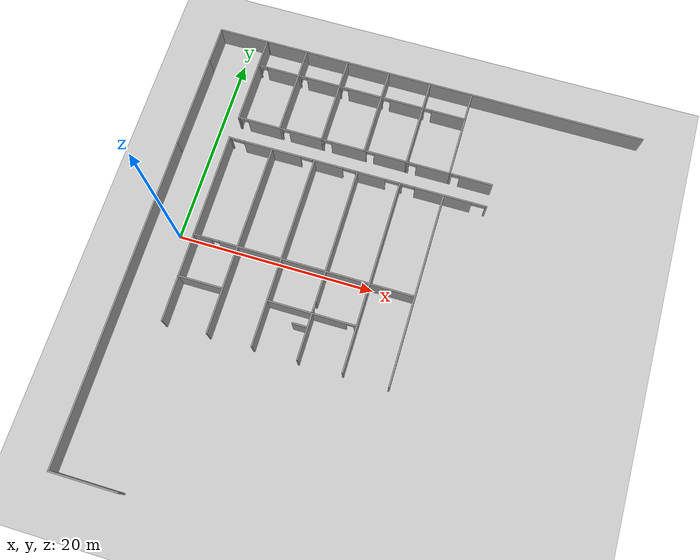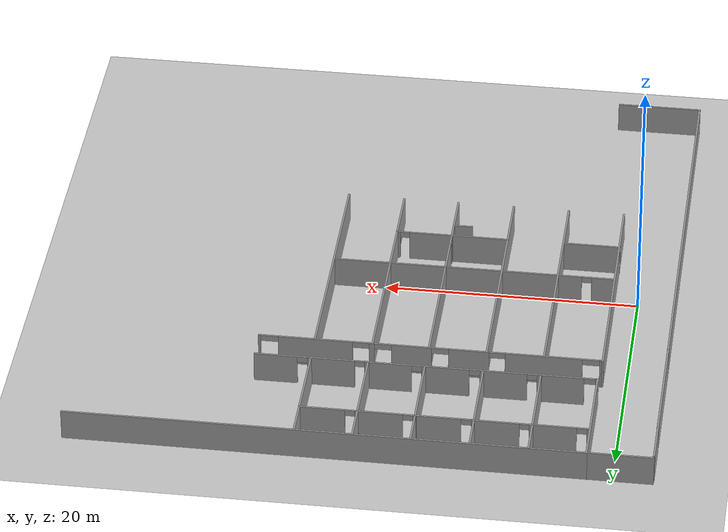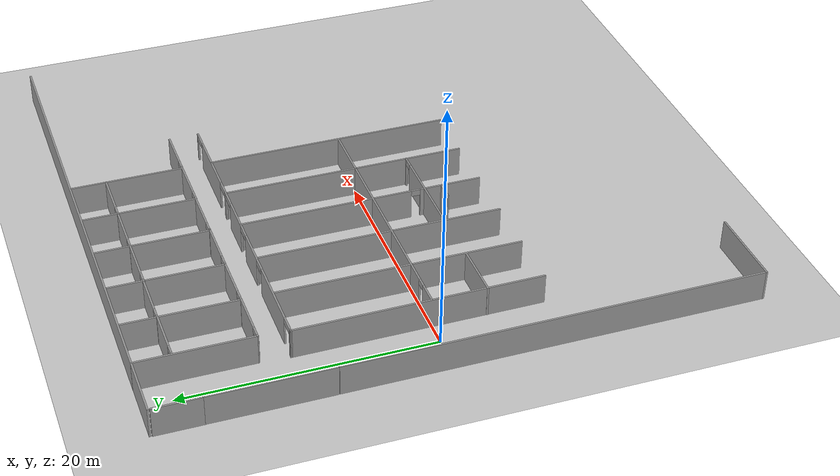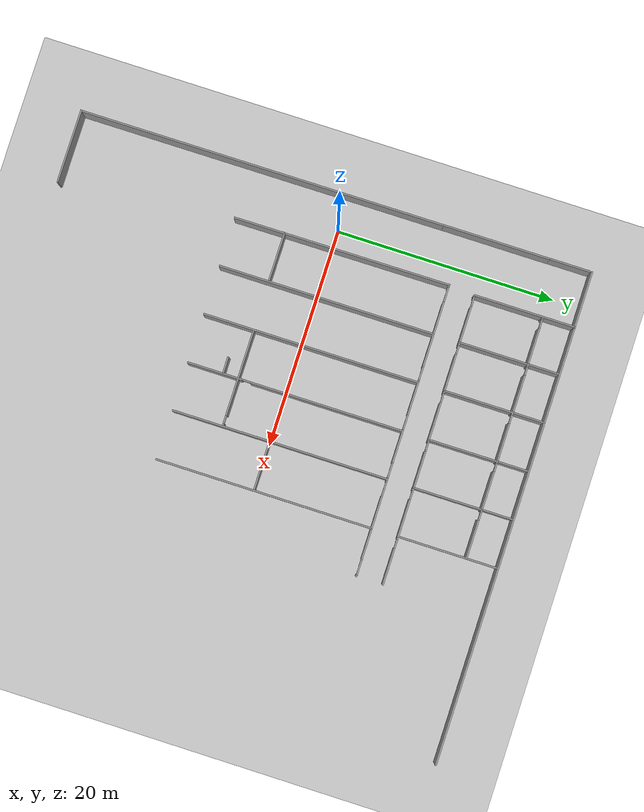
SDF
<sdf version="1.7">
 <world name="default">
  <model name="ground_plane">
   <static>1</static>
   <link name="link">
    <collision name="collision">
     <geometry><plane><normal>0 0 1</normal><size>100 100</size></plane></geometry>
     <surface>
      <contact><collide_bitmask>65535</collide_bitmask></contact>
      <friction><ode><mu>100</mu><mu2>50</mu2></ode></friction>
     </surface>
    </collision>
    <visual name="visual">
     <cast_shadows>0</cast_shadows>
     <geometry><plane><normal>0 0 1</normal><size>100 100</size></plane></geometry>
     <material>
      <script><uri>file://media/materials/scripts/gazebo.material</uri><name>Gazebo/Grey</name></script>
     </material>
    </visual>
   </link>
  </model>
  <model name="anglo_teste">
   <pose>0.302227 -1.18447 0 0 -0 0</pose>
   <link name="Wall_2">
    <collision name="Wall_2_Collision">
     <geometry><box><size>33.2918 0.15 2.5</size></box></geometry>
     <pose>0 0 1.25 0 -0 0</pose>
    </collision>
    <visual name="Wall_2_Visual">
     <pose>0 0 1.25 0 -0 0</pose>
     <geometry><box><size>33.2918 0.15 2.5</size></box></geometry>
     <material>
      <script><uri>file://media/materials/scripts/gazebo.material</uri><name>Gazebo/Grey</name></script>
      <ambient>1 1 1 1</ambient>
     </material>
     <meta><layer>0</layer></meta>
    </visual>
    <pose>-3.28849 -6.78646 0 0 -0 -1.5686</pose>
   </link>
   <link name="Wall_4">
    <collision name="Wall_4_Collision">
     <geometry><box><size>6.75 0.15 2.5</size></box></geometry>
     <pose>0 0 1.25 0 -0 0</pose>
    </collision>
    <visual name="Wall_4_Visual">
     <pose>0 0 1.25 0 -0 0</pose>
     <geometry><box><size>6.75 0.15 2.5</size></box></geometry>
     <material>
      <script><uri>file://media/materials/scripts/gazebo.material</uri><name>Gazebo/Grey</name></script>
      <ambient>1 1 1 1</ambient>
     </material>
     <meta><layer>0</layer></meta>
    </visual>
    <pose>0.047964 -23.4996 0 0 -0 3.14159</pose>
   </link>
   <link name="Wall_6">
    <collision name="Wall_6_Collision">
     <geometry><box><size>5.25 0.15 2.5</size></box></geometry>
     <pose>0 0 1.25 0 -0 0</pose>
    </collision>
    <visual name="Wall_6_Visual">
     <pose>0 0 1.25 0 -0 0</pose>
     <geometry><box><size>5.25 0.15 2.5</size></box></geometry>
     <material>
      <script><uri>file://media/materials/scripts/gazebo.material</uri><name>Gazebo/Grey</name></script>
      <ambient>1 1 1 1</ambient>
     </material>
     <meta><layer>0</layer></meta>
    </visual>
    <pose>-0.774526 23.4996 0 0 -0 3.14159</pose>
   </link>
   <link name="Wall_8">
    <collision name="Wall_8_Collision">
     <geometry><box><size>3.75 0.15 2.5</size></box></geometry>
     <pose>0 0 1.25 0 -0 0</pose>
    </collision>
    <visual name="Wall_8_Visual">
     <pose>0 0 1.25 0 -0 0</pose>
     <geometry><box><size>3.75 0.15 2.5</size></box></geometry>
     <material>
      <script><uri>file://media/materials/scripts/gazebo.material</uri><name>Gazebo/Grey</name></script>
      <ambient>1 1 1 1</ambient>
     </material>
     <meta><layer>0</layer></meta>
    </visual>
    <pose>-3.34796 21.478 0 0 -0 -1.5708</pose>
   </link>
   <static>1</static>
  </model>
  <model name="anglo_3_andar_metade">
   <pose>-4.28797 -1.08288 0 0 -0 0</pose>
   <link name="Wall_2">
    <collision name="Wall_2_Collision">
     <geometry><box><size>40.0201 0.15 2.5</size></box></geometry>
     <pose>0 0 1.25 0 -0 0</pose>
    </collision>
    <visual name="Wall_2_Visual">
     <pose>0 0 1.25 0 -0 0</pose>
     <geometry><box><size>40.0201 0.15 2.5</size></box></geometry>
     <material>
      <script><uri>file://media/materials/scripts/gazebo.material</uri><name>Gazebo/Grey</name></script>
      <ambient>1 1 1 1</ambient>
     </material>
     <meta><layer>0</layer></meta>
    </visual>
    <pose>26.2327 23.3787 0 0 -0 3.14034</pose>
   </link>
   <link name="Wall_31">
    <collision name="Wall_31_Collision">
     <geometry><box><size>9.25 0.15 2.5</size></box></geometry>
     <pose>0 0 1.25 0 -0 0</pose>
    </collision>
    <visual name="Wall_31_Visual">
     <pose>0 0 1.25 0 -0 0</pose>
     <geometry><box><size>9.25 0.15 2.5</size></box></geometry>
     <material>
      <script><uri>file://media/materials/scripts/gazebo.material</uri><name>Gazebo/Grey</name></script>
      <ambient>1 1 1 1</ambient>
     </material>
     <meta><layer>0</layer></meta>
    </visual>
    <pose>28.4177 18.8237 0 0 -0 -1.5708</pose>
   </link>
   <link name="Wall_34">
    <pose>30.5927 14.2737 0 0 -0 0</pose>
    <visual name="Wall_34_Visual_0">
     <pose>-2.08 0 1.25 0 -0 0</pose>
     <geometry><box><size>0.34 0.15 2.5</size></box></geometry>
     <material>
      <script><uri>file://media/materials/scripts/gazebo.material</uri><name>Gazebo/Grey</name></script>
      <ambient>1 1 1 1</ambient>
     </material>
     <meta><layer>0</layer></meta>
    </visual>
    <collision name="Wall_34_Collision_0">
     <geometry><box><size>0.34 0.15 2.5</size></box></geometry>
     <pose>-2.08 0 1.25 0 -0 0</pose>
    </collision>
    <visual name="Wall_34_Visual_1">
     <pose>0.56 0 1.25 0 -0 0</pose>
     <geometry><box><size>3.38 0.15 2.5</size></box></geometry>
     <material>
      <script><uri>file://media/materials/scripts/gazebo.material</uri><name>Gazebo/Grey</name></script>
      <ambient>1 1 1 1</ambient>
     </material>
     <meta><layer>0</layer></meta>
    </visual>
    <collision name="Wall_34_Collision_1">
     <geometry><box><size>3.38 0.15 2.5</size></box></geometry>
     <pose>0.56 0 1.25 0 -0 0</pose>
    </collision>
    <visual name="Wall_34_Visual_2">
     <pose>-1.52 0 2.25 0 -0 0</pose>
     <geometry><box><size>0.78 0.15 0.5</size></box></geometry>
     <material>
      <script><uri>file://media/materials/scripts/gazebo.material</uri><name>Gazebo/Grey</name></script>
      <ambient>1 1 1 1</ambient>
     </material>
     <meta><layer>0</layer></meta>
    </visual>
    <collision name="Wall_34_Collision_2">
     <geometry><box><size>0.78 0.15 0.5</size></box></geometry>
     <pose>-1.52 0 2.25 0 -0 0</pose>
    </collision>
   </link>
   <link name="Wall_38">
    <collision name="Wall_38_Collision">
     <geometry><box><size>9.25 0.15 2.5</size></box></geometry>
     <pose>0 0 1.25 0 -0 0</pose>
    </collision>
    <visual name="Wall_38_Visual">
     <pose>0 0 1.25 0 -0 0</pose>
     <geometry><box><size>9.25 0.15 2.5</size></box></geometry>
     <material>
      <script><uri>file://media/materials/scripts/gazebo.material</uri><name>Gazebo/Grey</name></script>
      <ambient>1 1 1 1</ambient>
     </material>
     <meta><layer>0</layer></meta>
    </visual>
    <pose>23.9777 18.8137 0 0 -0 -1.5708</pose>
   </link>
   <link name="Wall_40">
    <pose>26.1977 14.2687 0 0 -0 0.002252</pose>
    <visual name="Wall_40_Visual_0">
     <pose>-2.12516 0 1.25 0 -0 0</pose>
     <geometry><box><size>0.339683 0.15 2.5</size></box></geometry>
     <material>
      <script><uri>file://media/materials/scripts/gazebo.material</uri><name>Gazebo/Grey</name></script>
      <ambient>1 1 1 1</ambient>
     </material>
     <meta><layer>0</layer></meta>
    </visual>
    <collision name="Wall_40_Collision_0">
     <geometry><box><size>0.339683 0.15 2.5</size></box></geometry>
     <pose>-2.12516 0 1.25 0 -0 0</pose>
    </collision>
    <visual name="Wall_40_Visual_1">
     <pose>0.55483 0 1.25 0 -0 0</pose>
     <geometry><box><size>3.48035 0.15 2.5</size></box></geometry>
     <material>
      <script><uri>file://media/materials/scripts/gazebo.material</uri><name>Gazebo/Grey</name></script>
      <ambient>1 1 1 1</ambient>
     </material>
     <meta><layer>0</layer></meta>
    </visual>
    <collision name="Wall_40_Collision_1">
     <geometry><box><size>3.48035 0.15 2.5</size></box></geometry>
     <pose>0.55483 0 1.25 0 -0 0</pose>
    </collision>
    <visual name="Wall_40_Visual_2">
     <pose>-1.57033 0 2.25 0 -0 0</pose>
     <geometry><box><size>0.769978 0.15 0.5</size></box></geometry>
     <material>
      <script><uri>file://media/materials/scripts/gazebo.material</uri><name>Gazebo/Grey</name></script>
      <ambient>1 1 1 1</ambient>
     </material>
     <meta><layer>0</layer></meta>
    </visual>
    <collision name="Wall_40_Collision_2">
     <geometry><box><size>0.769978 0.15 0.5</size></box></geometry>
     <pose>-1.57033 0 2.25 0 -0 0</pose>
    </collision>
   </link>
   <link name="Wall_42">
    <pose>26.1877 20.4887 0 0 -0 -0.002242</pose>
    <visual name="Wall_42_Visual_0">
     <pose>-2.16487 0 1.25 0 -0 0</pose>
     <geometry><box><size>0.280266 0.15 2.5</size></box></geometry>
     <material>
      <script><uri>file://media/materials/scripts/gazebo.material</uri><name>Gazebo/Grey</name></script>
      <ambient>1 1 1 1</ambient>
     </material>
     <meta><layer>0</layer></meta>
    </visual>
    <collision name="Wall_42_Collision_0">
     <geometry><box><size>0.280266 0.15 2.5</size></box></geometry>
     <pose>-2.16487 0 1.25 0 -0 0</pose>
    </collision>
    <visual name="Wall_42_Visual_1">
     <pose>0.515178 0 1.25 0 -0 0</pose>
     <geometry><box><size>3.57965 0.15 2.5</size></box></geometry>
     <material>
      <script><uri>file://media/materials/scripts/gazebo.material</uri><name>Gazebo/Grey</name></script>
      <ambient>1 1 1 1</ambient>
     </material>
     <meta><layer>0</layer></meta>
    </visual>
    <collision name="Wall_42_Collision_1">
     <geometry><box><size>3.57965 0.15 2.5</size></box></geometry>
     <pose>0.515178 0 1.25 0 -0 0</pose>
    </collision>
    <visual name="Wall_42_Visual_2">
     <pose>-1.64969 0 2.25 0 -0 0</pose>
     <geometry><box><size>0.75009 0.15 0.5</size></box></geometry>
     <material>
      <script><uri>file://media/materials/scripts/gazebo.material</uri><name>Gazebo/Grey</name></script>
      <ambient>1 1 1 1</ambient>
     </material>
     <meta><layer>0</layer></meta>
    </visual>
    <collision name="Wall_42_Collision_2">
     <geometry><box><size>0.75009 0.15 0.5</size></box></geometry>
     <pose>-1.64969 0 2.25 0 -0 0</pose>
    </collision>
   </link>
   <link name="Wall_46">
    <collision name="Wall_46_Collision">
     <geometry><box><size>9.25 0.15 2.5</size></box></geometry>
     <pose>0 0 1.25 0 -0 0</pose>
    </collision>
    <visual name="Wall_46_Visual">
     <pose>0 0 1.25 0 -0 0</pose>
     <geometry><box><size>9.25 0.15 2.5</size></box></geometry>
     <material>
      <script><uri>file://media/materials/scripts/gazebo.material</uri><name>Gazebo/Grey</name></script>
      <ambient>1 1 1 1</ambient>
     </material>
     <meta><layer>0</layer></meta>
    </visual>
    <pose>19.5777 18.8337 0 0 -0 -1.5686</pose>
   </link>
   <link name="Wall_506">
    <pose>19.4577 11.8537 0 0 -0 -3.14084</pose>
    <visual name="Wall_506_Visual_0">
     <pose>-13.3091 0 1.25 0 -0 0</pose>
     <geometry><box><size>0.191801 0.15 2.5</size></box></geometry>
     <material>
      <script><uri>file://media/materials/scripts/gazebo.material</uri><name>Gazebo/Grey</name></script>
      <ambient>1 1 1 1</ambient>
     </material>
     <meta><layer>0</layer></meta>
    </visual>
    <collision name="Wall_506_Collision_0">
     <geometry><box><size>0.191801 0.15 2.5</size></box></geometry>
     <pose>-13.3091 0 1.25 0 -0 0</pose>
    </collision>
    <visual name="Wall_506_Visual_1">
     <pose>-8.94267 0 1.25 0 -0 0</pose>
     <geometry><box><size>5.80105 0.15 2.5</size></box></geometry>
     <material>
      <script><uri>file://media/materials/scripts/gazebo.material</uri><name>Gazebo/Grey</name></script>
      <ambient>1 1 1 1</ambient>
     </material>
     <meta><layer>0</layer></meta>
    </visual>
    <collision name="Wall_506_Collision_1">
     <geometry><box><size>5.80105 0.15 2.5</size></box></geometry>
     <pose>-8.94267 0 1.25 0 -0 0</pose>
    </collision>
    <visual name="Wall_506_Visual_2">
     <pose>-4.55522 0 1.25 0 -0 0</pose>
     <geometry><box><size>0.393856 0.15 2.5</size></box></geometry>
     <material>
      <script><uri>file://media/materials/scripts/gazebo.material</uri><name>Gazebo/Grey</name></script>
      <ambient>1 1 1 1</ambient>
     </material>
     <meta><layer>0</layer></meta>
    </visual>
    <collision name="Wall_506_Collision_2">
     <geometry><box><size>0.393856 0.15 2.5</size></box></geometry>
     <pose>-4.55522 0 1.25 0 -0 0</pose>
    </collision>
    <visual name="Wall_506_Visual_3">
     <pose>-1.45079 0 1.25 0 -0 0</pose>
     <geometry><box><size>3.11499 0.15 2.5</size></box></geometry>
     <material>
      <script><uri>file://media/materials/scripts/gazebo.material</uri><name>Gazebo/Grey</name></script>
      <ambient>1 1 1 1</ambient>
     </material>
     <meta><layer>0</layer></meta>
    </visual>
    <collision name="Wall_506_Collision_3">
     <geometry><box><size>3.11499 0.15 2.5</size></box></geometry>
     <pose>-1.45079 0 1.25 0 -0 0</pose>
    </collision>
    <visual name="Wall_506_Visual_4">
     <pose>2.98168 0 1.25 0 -0 0</pose>
     <geometry><box><size>3.14995 0.15 2.5</size></box></geometry>
     <material>
      <script><uri>file://media/materials/scripts/gazebo.material</uri><name>Gazebo/Grey</name></script>
      <ambient>1 1 1 1</ambient>
     </material>
     <meta><layer>0</layer></meta>
    </visual>
    <collision name="Wall_506_Collision_4">
     <geometry><box><size>3.14995 0.15 2.5</size></box></geometry>
     <pose>2.98168 0 1.25 0 -0 0</pose>
    </collision>
    <visual name="Wall_506_Visual_5">
     <pose>8.78482 0 1.25 0 -0 0</pose>
     <geometry><box><size>5.97634 0.15 2.5</size></box></geometry>
     <material>
      <script><uri>file://media/materials/scripts/gazebo.material</uri><name>Gazebo/Grey</name></script>
      <ambient>1 1 1 1</ambient>
     </material>
     <meta><layer>0</layer></meta>
    </visual>
    <collision name="Wall_506_Collision_5">
     <geometry><box><size>5.97634 0.15 2.5</size></box></geometry>
     <pose>8.78482 0 1.25 0 -0 0</pose>
    </collision>
    <visual name="Wall_506_Visual_6">
     <pose>13.254 0 1.25 0 -0 0</pose>
     <geometry><box><size>0.302005 0.15 2.5</size></box></geometry>
     <material>
      <script><uri>file://media/materials/scripts/gazebo.material</uri><name>Gazebo/Grey</name></script>
      <ambient>1 1 1 1</ambient>
     </material>
     <meta><layer>0</layer></meta>
    </visual>
    <collision name="Wall_506_Collision_6">
     <geometry><box><size>0.302005 0.15 2.5</size></box></geometry>
     <pose>13.254 0 1.25 0 -0 0</pose>
    </collision>
    <visual name="Wall_506_Visual_7">
     <pose>-12.5282 0 2.25 0 -0 0</pose>
     <geometry><box><size>1.37 0.15 0.5</size></box></geometry>
     <material>
      <script><uri>file://media/materials/scripts/gazebo.material</uri><name>Gazebo/Grey</name></script>
      <ambient>1 1 1 1</ambient>
     </material>
     <meta><layer>0</layer></meta>
    </visual>
    <collision name="Wall_506_Collision_7">
     <geometry><box><size>1.37 0.15 0.5</size></box></geometry>
     <pose>-12.5282 0 2.25 0 -0 0</pose>
    </collision>
    <visual name="Wall_506_Visual_8">
     <pose>-5.39715 0 2.25 0 -0 0</pose>
     <geometry><box><size>1.29 0.15 0.5</size></box></geometry>
     <material>
      <script><uri>file://media/materials/scripts/gazebo.material</uri><name>Gazebo/Grey</name></script>
      <ambient>1 1 1 1</ambient>
     </material>
     <meta><layer>0</layer></meta>
    </visual>
    <collision name="Wall_506_Collision_8">
     <geometry><box><size>1.29 0.15 0.5</size></box></geometry>
     <pose>-5.39715 0 2.25 0 -0 0</pose>
    </collision>
    <visual name="Wall_506_Visual_9">
     <pose>-3.68329 0 2.25 0 -0 0</pose>
     <geometry><box><size>1.35 0.15 0.5</size></box></geometry>
     <material>
      <script><uri>file://media/materials/scripts/gazebo.material</uri><name>Gazebo/Grey</name></script>
      <ambient>1 1 1 1</ambient>
     </material>
     <meta><layer>0</layer></meta>
    </visual>
    <collision name="Wall_506_Collision_9">
     <geometry><box><size>1.35 0.15 0.5</size></box></geometry>
     <pose>-3.68329 0 2.25 0 -0 0</pose>
    </collision>
    <visual name="Wall_506_Visual_10">
     <pose>0.756703 0 2.25 0 -0 0</pose>
     <geometry><box><size>1.3 0.15 0.5</size></box></geometry>
     <material>
      <script><uri>file://media/materials/scripts/gazebo.material</uri><name>Gazebo/Grey</name></script>
      <ambient>1 1 1 1</ambient>
     </material>
     <meta><layer>0</layer></meta>
    </visual>
    <collision name="Wall_506_Collision_10">
     <geometry><box><size>1.3 0.15 0.5</size></box></geometry>
     <pose>0.756703 0 2.25 0 -0 0</pose>
    </collision>
    <visual name="Wall_506_Visual_11">
     <pose>5.17665 0 2.25 0 -0 0</pose>
     <geometry><box><size>1.24 0.15 0.5</size></box></geometry>
     <material>
      <script><uri>file://media/materials/scripts/gazebo.material</uri><name>Gazebo/Grey</name></script>
      <ambient>1 1 1 1</ambient>
     </material>
     <meta><layer>0</layer></meta>
    </visual>
    <collision name="Wall_506_Collision_11">
     <geometry><box><size>1.24 0.15 0.5</size></box></geometry>
     <pose>5.17665 0 2.25 0 -0 0</pose>
    </collision>
    <visual name="Wall_506_Visual_12">
     <pose>12.438 0 2.25 0 -0 0</pose>
     <geometry><box><size>1.33 0.15 0.5</size></box></geometry>
     <material>
      <script><uri>file://media/materials/scripts/gazebo.material</uri><name>Gazebo/Grey</name></script>
      <ambient>1 1 1 1</ambient>
     </material>
     <meta><layer>0</layer></meta>
    </visual>
    <collision name="Wall_506_Collision_12">
     <geometry><box><size>1.33 0.15 0.5</size></box></geometry>
     <pose>12.438 0 2.25 0 -0 0</pose>
    </collision>
   </link>
   <link name="Wall_508">
    <collision name="Wall_508_Collision">
     <geometry><box><size>19.8202 0.15 2.5</size></box></geometry>
     <pose>0 0 1.25 0 -0 0</pose>
    </collision>
    <visual name="Wall_508_Visual">
     <pose>0 0 1.25 0 -0 0</pose>
     <geometry><box><size>19.8202 0.15 2.5</size></box></geometry>
     <material>
      <script><uri>file://media/materials/scripts/gazebo.material</uri><name>Gazebo/Grey</name></script>
      <ambient>1 1 1 1</ambient>
     </material>
     <meta><layer>0</layer></meta>
    </visual>
    <pose>6.17271 2.01868 0 0 -0 -1.56622</pose>
   </link>
   <link name="Wall_519">
    <collision name="Wall_519_Collision">
     <geometry><box><size>19.75 0.15 2.5</size></box></geometry>
     <pose>0 0 1.25 0 -0 0</pose>
    </collision>
    <visual name="Wall_519_Visual">
     <pose>0 0 1.25 0 -0 0</pose>
     <geometry><box><size>19.75 0.15 2.5</size></box></geometry>
     <material>
      <script><uri>file://media/materials/scripts/gazebo.material</uri><name>Gazebo/Grey</name></script>
      <ambient>1 1 1 1</ambient>
     </material>
     <meta><layer>0</layer></meta>
    </visual>
    <pose>28.4477 1.99368 0 0 -0 -1.5708</pose>
   </link>
   <link name="Wall_533">
    <collision name="Wall_533_Collision">
     <geometry><box><size>19.75 0.15 2.5</size></box></geometry>
     <pose>0 0 1.25 0 -0 0</pose>
    </collision>
    <visual name="Wall_533_Visual">
     <pose>0 0 1.25 0 -0 0</pose>
     <geometry><box><size>19.75 0.15 2.5</size></box></geometry>
     <material>
      <script><uri>file://media/materials/scripts/gazebo.material</uri><name>Gazebo/Grey</name></script>
      <ambient>1 1 1 1</ambient>
     </material>
     <meta><layer>0</layer></meta>
    </visual>
    <pose>23.9577 2.05368 0 0 -0 -1.5708</pose>
   </link>
   <link name="Wall_535">
    <pose>17.2677 1.10368 0 0 -0 0</pose>
    <visual name="Wall_535_Visual_0">
     <pose>-10.205 0 1.25 0 -0 0</pose>
     <geometry><box><size>1.84 0.15 2.5</size></box></geometry>
     <material>
      <script><uri>file://media/materials/scripts/gazebo.material</uri><name>Gazebo/Grey</name></script>
      <ambient>1 1 1 1</ambient>
     </material>
     <meta><layer>0</layer></meta>
    </visual>
    <collision name="Wall_535_Collision_0">
     <geometry><box><size>1.84 0.15 2.5</size></box></geometry>
     <pose>-10.205 0 1.25 0 -0 0</pose>
    </collision>
    <visual name="Wall_535_Visual_1">
     <pose>1.31 0 1.25 0 -0 0</pose>
     <geometry><box><size>19.63 0.15 2.5</size></box></geometry>
     <material>
      <script><uri>file://media/materials/scripts/gazebo.material</uri><name>Gazebo/Grey</name></script>
      <ambient>1 1 1 1</ambient>
     </material>
     <meta><layer>0</layer></meta>
    </visual>
    <collision name="Wall_535_Collision_1">
     <geometry><box><size>19.63 0.15 2.5</size></box></geometry>
     <pose>1.31 0 1.25 0 -0 0</pose>
    </collision>
    <visual name="Wall_535_Visual_2">
     <pose>-8.895 0 2.25 0 -0 0</pose>
     <geometry><box><size>0.78 0.15 0.5</size></box></geometry>
     <material>
      <script><uri>file://media/materials/scripts/gazebo.material</uri><name>Gazebo/Grey</name></script>
      <ambient>1 1 1 1</ambient>
     </material>
     <meta><layer>0</layer></meta>
    </visual>
    <collision name="Wall_535_Collision_2">
     <geometry><box><size>0.78 0.15 0.5</size></box></geometry>
     <pose>-8.895 0 2.25 0 -0 0</pose>
    </collision>
   </link>
   <link name="Wall_537">
    <pose>19.5677 2.01368 0 0 -0 -1.5708</pose>
    <visual name="Wall_537_Visual_0">
     <pose>-2.89 0 1.25 0 -0 0</pose>
     <geometry><box><size>13.97 0.15 2.5</size></box></geometry>
     <material>
      <script><uri>file://media/materials/scripts/gazebo.material</uri><name>Gazebo/Grey</name></script>
      <ambient>1 1 1 1</ambient>
     </material>
     <meta><layer>0</layer></meta>
    </visual>
    <collision name="Wall_537_Collision_0">
     <geometry><box><size>13.97 0.15 2.5</size></box></geometry>
     <pose>-2.89 0 1.25 0 -0 0</pose>
    </collision>
    <visual name="Wall_537_Visual_1">
     <pose>7.355 0 1.25 0 -0 0</pose>
     <geometry><box><size>5.04 0.15 2.5</size></box></geometry>
     <material>
      <script><uri>file://media/materials/scripts/gazebo.material</uri><name>Gazebo/Grey</name></script>
      <ambient>1 1 1 1</ambient>
     </material>
     <meta><layer>0</layer></meta>
    </visual>
    <collision name="Wall_537_Collision_1">
     <geometry><box><size>5.04 0.15 2.5</size></box></geometry>
     <pose>7.355 0 1.25 0 -0 0</pose>
    </collision>
    <visual name="Wall_537_Visual_2">
     <pose>4.465 0 2.25 0 -0 0</pose>
     <geometry><box><size>0.74 0.15 0.5</size></box></geometry>
     <material>
      <script><uri>file://media/materials/scripts/gazebo.material</uri><name>Gazebo/Grey</name></script>
      <ambient>1 1 1 1</ambient>
     </material>
     <meta><layer>0</layer></meta>
    </visual>
    <collision name="Wall_537_Collision_2">
     <geometry><box><size>0.74 0.15 0.5</size></box></geometry>
     <pose>4.465 0 2.25 0 -0 0</pose>
    </collision>
   </link>
   <link name="Wall_539">
    <collision name="Wall_539_Collision">
     <geometry><box><size>19.75 0.15 2.5</size></box></geometry>
     <pose>0 0 1.25 0 -0 0</pose>
    </collision>
    <visual name="Wall_539_Visual">
     <pose>0 0 1.25 0 -0 0</pose>
     <geometry><box><size>19.75 0.15 2.5</size></box></geometry>
     <material>
      <script><uri>file://media/materials/scripts/gazebo.material</uri><name>Gazebo/Grey</name></script>
      <ambient>1 1 1 1</ambient>
     </material>
     <meta><layer>0</layer></meta>
    </visual>
    <pose>15.0977 2.03368 0 0 -0 -1.5708</pose>
   </link>
   <link name="Wall_541">
    <collision name="Wall_541_Collision">
     <geometry><box><size>19.75 0.15 2.5</size></box></geometry>
     <pose>0 0 1.25 0 -0 0</pose>
    </collision>
    <visual name="Wall_541_Visual">
     <pose>0 0 1.25 0 -0 0</pose>
     <geometry><box><size>19.75 0.15 2.5</size></box></geometry>
     <material>
      <script><uri>file://media/materials/scripts/gazebo.material</uri><name>Gazebo/Grey</name></script>
      <ambient>1 1 1 1</ambient>
     </material>
     <meta><layer>0</layer></meta>
    </visual>
    <pose>10.6577 2.03368 0 0 -0 -1.5708</pose>
   </link>
   <link name="Wall_543">
    <collision name="Wall_543_Collision">
     <geometry><box><size>4.5 0.15 2.5</size></box></geometry>
     <pose>0 0 1.25 0 -0 0</pose>
    </collision>
    <visual name="Wall_543_Visual">
     <pose>0 0 1.25 0 -0 0</pose>
     <geometry><box><size>4.5 0.15 2.5</size></box></geometry>
     <material>
      <script><uri>file://media/materials/scripts/gazebo.material</uri><name>Gazebo/Grey</name></script>
      <ambient>1 1 1 1</ambient>
     </material>
     <meta><layer>0</layer></meta>
    </visual>
    <pose>8.35271 -3.27632 0 0 -0 0</pose>
   </link>
   <link name="Wall_55">
    <pose>21.7527 14.2837 0 0 -0 0</pose>
    <visual name="Wall_55_Visual_0">
     <pose>-2.09 0 1.25 0 -0 0</pose>
     <geometry><box><size>0.32 0.15 2.5</size></box></geometry>
     <material>
      <script><uri>file://media/materials/scripts/gazebo.material</uri><name>Gazebo/Grey</name></script>
      <ambient>1 1 1 1</ambient>
     </material>
     <meta><layer>0</layer></meta>
    </visual>
    <collision name="Wall_55_Collision_0">
     <geometry><box><size>0.32 0.15 2.5</size></box></geometry>
     <pose>-2.09 0 1.25 0 -0 0</pose>
    </collision>
    <visual name="Wall_55_Visual_1">
     <pose>0.545 0 1.25 0 -0 0</pose>
     <geometry><box><size>3.41 0.15 2.5</size></box></geometry>
     <material>
      <script><uri>file://media/materials/scripts/gazebo.material</uri><name>Gazebo/Grey</name></script>
      <ambient>1 1 1 1</ambient>
     </material>
     <meta><layer>0</layer></meta>
    </visual>
    <collision name="Wall_55_Collision_1">
     <geometry><box><size>3.41 0.15 2.5</size></box></geometry>
     <pose>0.545 0 1.25 0 -0 0</pose>
    </collision>
    <visual name="Wall_55_Visual_2">
     <pose>-1.545 0 2.25 0 -0 0</pose>
     <geometry><box><size>0.77 0.15 0.5</size></box></geometry>
     <material>
      <script><uri>file://media/materials/scripts/gazebo.material</uri><name>Gazebo/Grey</name></script>
      <ambient>1 1 1 1</ambient>
     </material>
     <meta><layer>0</layer></meta>
    </visual>
    <collision name="Wall_55_Collision_2">
     <geometry><box><size>0.77 0.15 0.5</size></box></geometry>
     <pose>-1.545 0 2.25 0 -0 0</pose>
    </collision>
   </link>
   <link name="Wall_57">
    <pose>21.7527 20.4987 0 0 -0 -0.002268</pose>
    <visual name="Wall_57_Visual_0">
     <pose>-2.14009 0 1.25 0 -0 0</pose>
     <geometry><box><size>0.27984 0.15 2.5</size></box></geometry>
     <material>
      <script><uri>file://media/materials/scripts/gazebo.material</uri><name>Gazebo/Grey</name></script>
      <ambient>1 1 1 1</ambient>
     </material>
     <meta><layer>0</layer></meta>
    </visual>
    <collision name="Wall_57_Collision_0">
     <geometry><box><size>0.27984 0.15 2.5</size></box></geometry>
     <pose>-2.14009 0 1.25 0 -0 0</pose>
    </collision>
    <visual name="Wall_57_Visual_1">
     <pose>0.509897 0 1.25 0 -0 0</pose>
     <geometry><box><size>3.54022 0.15 2.5</size></box></geometry>
     <material>
      <script><uri>file://media/materials/scripts/gazebo.material</uri><name>Gazebo/Grey</name></script>
      <ambient>1 1 1 1</ambient>
     </material>
     <meta><layer>0</layer></meta>
    </visual>
    <collision name="Wall_57_Collision_1">
     <geometry><box><size>3.54022 0.15 2.5</size></box></geometry>
     <pose>0.509897 0 1.25 0 -0 0</pose>
    </collision>
    <visual name="Wall_57_Visual_2">
     <pose>-1.63019 0 2.25 0 -0 0</pose>
     <geometry><box><size>0.739955 0.15 0.5</size></box></geometry>
     <material>
      <script><uri>file://media/materials/scripts/gazebo.material</uri><name>Gazebo/Grey</name></script>
      <ambient>1 1 1 1</ambient>
     </material>
     <meta><layer>0</layer></meta>
    </visual>
    <collision name="Wall_57_Collision_2">
     <geometry><box><size>0.739955 0.15 0.5</size></box></geometry>
     <pose>-1.63019 0 2.25 0 -0 0</pose>
    </collision>
   </link>
   <link name="Wall_573">
    <collision name="Wall_573_Collision">
     <geometry><box><size>1.5 0.15 2.5</size></box></geometry>
     <pose>0 0 1.25 0 -0 0</pose>
    </collision>
    <visual name="Wall_573_Visual">
     <pose>0 0 1.25 0 -0 0</pose>
     <geometry><box><size>1.5 0.15 2.5</size></box></geometry>
     <material>
      <script><uri>file://media/materials/scripts/gazebo.material</uri><name>Gazebo/Grey</name></script>
      <ambient>1 1 1 1</ambient>
     </material>
     <meta><layer>0</layer></meta>
    </visual>
    <pose>18.7827 -4.60632 0 0 -0 0</pose>
   </link>
   <link name="Wall_581">
    <pose>19.5227 -3.20632 0 0 -0 0</pose>
    <visual name="Wall_581_Visual_0">
     <pose>-0.535 0 1.25 0 -0 0</pose>
     <geometry><box><size>7.93 0.15 2.5</size></box></geometry>
     <material>
      <script><uri>file://media/materials/scripts/gazebo.material</uri><name>Gazebo/Grey</name></script>
      <ambient>1 1 1 1</ambient>
     </material>
     <meta><layer>0</layer></meta>
    </visual>
    <collision name="Wall_581_Collision_0">
     <geometry><box><size>7.93 0.15 2.5</size></box></geometry>
     <pose>-0.535 0 1.25 0 -0 0</pose>
    </collision>
    <visual name="Wall_581_Visual_1">
     <pose>4.335 0 1.25 0 -0 0</pose>
     <geometry><box><size>0.330001 0.15 2.5</size></box></geometry>
     <material>
      <script><uri>file://media/materials/scripts/gazebo.material</uri><name>Gazebo/Grey</name></script>
      <ambient>1 1 1 1</ambient>
     </material>
     <meta><layer>0</layer></meta>
    </visual>
    <collision name="Wall_581_Collision_1">
     <geometry><box><size>0.330001 0.15 2.5</size></box></geometry>
     <pose>4.335 0 1.25 0 -0 0</pose>
    </collision>
    <visual name="Wall_581_Visual_2">
     <pose>3.8 0 2.25 0 -0 0</pose>
     <geometry><box><size>0.74 0.15 0.5</size></box></geometry>
     <material>
      <script><uri>file://media/materials/scripts/gazebo.material</uri><name>Gazebo/Grey</name></script>
      <ambient>1 1 1 1</ambient>
     </material>
     <meta><layer>0</layer></meta>
    </visual>
    <collision name="Wall_581_Collision_2">
     <geometry><box><size>0.74 0.15 0.5</size></box></geometry>
     <pose>3.8 0 2.25 0 -0 0</pose>
    </collision>
   </link>
   <link name="Wall_59">
    <collision name="Wall_59_Collision">
     <geometry><box><size>9.25 0.15 2.5</size></box></geometry>
     <pose>0 0 1.25 0 -0 0</pose>
    </collision>
    <visual name="Wall_59_Visual">
     <pose>0 0 1.25 0 -0 0</pose>
     <geometry><box><size>9.25 0.15 2.5</size></box></geometry>
     <material>
      <script><uri>file://media/materials/scripts/gazebo.material</uri><name>Gazebo/Grey</name></script>
      <ambient>1 1 1 1</ambient>
     </material>
     <meta><layer>0</layer></meta>
    </visual>
    <pose>15.0977 18.8137 0 0 -0 -1.5708</pose>
   </link>
   <link name="Wall_61">
    <pose>17.3977 14.2637 0 0 -0 0</pose>
    <visual name="Wall_61_Visual_0">
     <pose>-2.22 0 1.25 0 -0 0</pose>
     <geometry><box><size>0.31 0.15 2.5</size></box></geometry>
     <material>
      <script><uri>file://media/materials/scripts/gazebo.material</uri><name>Gazebo/Grey</name></script>
      <ambient>1 1 1 1</ambient>
     </material>
     <meta><layer>0</layer></meta>
    </visual>
    <collision name="Wall_61_Collision_0">
     <geometry><box><size>0.31 0.15 2.5</size></box></geometry>
     <pose>-2.22 0 1.25 0 -0 0</pose>
    </collision>
    <visual name="Wall_61_Visual_1">
     <pose>0.57 0 1.25 0 -0 0</pose>
     <geometry><box><size>3.61 0.15 2.5</size></box></geometry>
     <material>
      <script><uri>file://media/materials/scripts/gazebo.material</uri><name>Gazebo/Grey</name></script>
      <ambient>1 1 1 1</ambient>
     </material>
     <meta><layer>0</layer></meta>
    </visual>
    <collision name="Wall_61_Collision_1">
     <geometry><box><size>3.61 0.15 2.5</size></box></geometry>
     <pose>0.57 0 1.25 0 -0 0</pose>
    </collision>
    <visual name="Wall_61_Visual_2">
     <pose>-1.65 0 2.25 0 -0 0</pose>
     <geometry><box><size>0.83 0.15 0.5</size></box></geometry>
     <material>
      <script><uri>file://media/materials/scripts/gazebo.material</uri><name>Gazebo/Grey</name></script>
      <ambient>1 1 1 1</ambient>
     </material>
     <meta><layer>0</layer></meta>
    </visual>
    <collision name="Wall_61_Collision_2">
     <geometry><box><size>0.83 0.15 0.5</size></box></geometry>
     <pose>-1.65 0 2.25 0 -0 0</pose>
    </collision>
   </link>
   <link name="Wall_63">
    <pose>17.3077 20.4987 0 0 -0 0.002232</pose>
    <visual name="Wall_63_Visual_0">
     <pose>-2.16505 0 1.25 0 -0 0</pose>
     <geometry><box><size>0.299909 0.15 2.5</size></box></geometry>
     <material>
      <script><uri>file://media/materials/scripts/gazebo.material</uri><name>Gazebo/Grey</name></script>
      <ambient>1 1 1 1</ambient>
     </material>
     <meta><layer>0</layer></meta>
    </visual>
    <collision name="Wall_63_Collision_0">
     <geometry><box><size>0.299909 0.15 2.5</size></box></geometry>
     <pose>-2.16505 0 1.25 0 -0 0</pose>
    </collision>
    <visual name="Wall_63_Visual_1">
     <pose>0.539966 0 1.25 0 -0 0</pose>
     <geometry><box><size>3.55008 0.15 2.5</size></box></geometry>
     <material>
      <script><uri>file://media/materials/scripts/gazebo.material</uri><name>Gazebo/Grey</name></script>
      <ambient>1 1 1 1</ambient>
     </material>
     <meta><layer>0</layer></meta>
    </visual>
    <collision name="Wall_63_Collision_1">
     <geometry><box><size>3.55008 0.15 2.5</size></box></geometry>
     <pose>0.539966 0 1.25 0 -0 0</pose>
    </collision>
    <visual name="Wall_63_Visual_2">
     <pose>-1.62508 0 2.25 0 -0 0</pose>
     <geometry><box><size>0.780023 0.15 0.5</size></box></geometry>
     <material>
      <script><uri>file://media/materials/scripts/gazebo.material</uri><name>Gazebo/Grey</name></script>
      <ambient>1 1 1 1</ambient>
     </material>
     <meta><layer>0</layer></meta>
    </visual>
    <collision name="Wall_63_Collision_2">
     <geometry><box><size>0.780023 0.15 0.5</size></box></geometry>
     <pose>-1.62508 0 2.25 0 -0 0</pose>
    </collision>
   </link>
   <link name="Wall_65">
    <collision name="Wall_65_Collision">
     <geometry><box><size>9.25 0.15 2.5</size></box></geometry>
     <pose>0 0 1.25 0 -0 0</pose>
    </collision>
    <visual name="Wall_65_Visual">
     <pose>0 0 1.25 0 -0 0</pose>
     <geometry><box><size>9.25 0.15 2.5</size></box></geometry>
     <material>
      <script><uri>file://media/materials/scripts/gazebo.material</uri><name>Gazebo/Grey</name></script>
      <ambient>1 1 1 1</ambient>
     </material>
     <meta><layer>0</layer></meta>
    </visual>
    <pose>10.6577 18.8037 0 0 -0 -1.5708</pose>
   </link>
   <link name="Wall_67">
    <pose>12.8777 14.2587 0 0 -0 0.002252</pose>
    <visual name="Wall_67_Visual_0">
     <pose>-2.11522 0 1.25 0 -0 0</pose>
     <geometry><box><size>0.359571 0.15 2.5</size></box></geometry>
     <material>
      <script><uri>file://media/materials/scripts/gazebo.material</uri><name>Gazebo/Grey</name></script>
      <ambient>1 1 1 1</ambient>
     </material>
     <meta><layer>0</layer></meta>
    </visual>
    <collision name="Wall_67_Collision_0">
     <geometry><box><size>0.359571 0.15 2.5</size></box></geometry>
     <pose>-2.11522 0 1.25 0 -0 0</pose>
    </collision>
    <visual name="Wall_67_Visual_1">
     <pose>0.559808 0 1.25 0 -0 0</pose>
     <geometry><box><size>3.47039 0.15 2.5</size></box></geometry>
     <material>
      <script><uri>file://media/materials/scripts/gazebo.material</uri><name>Gazebo/Grey</name></script>
      <ambient>1 1 1 1</ambient>
     </material>
     <meta><layer>0</layer></meta>
    </visual>
    <collision name="Wall_67_Collision_1">
     <geometry><box><size>3.47039 0.15 2.5</size></box></geometry>
     <pose>0.559808 0 1.25 0 -0 0</pose>
    </collision>
    <visual name="Wall_67_Visual_2">
     <pose>-1.55541 0 2.25 0 -0 0</pose>
     <geometry><box><size>0.760045 0.15 0.5</size></box></geometry>
     <material>
      <script><uri>file://media/materials/scripts/gazebo.material</uri><name>Gazebo/Grey</name></script>
      <ambient>1 1 1 1</ambient>
     </material>
     <meta><layer>0</layer></meta>
    </visual>
    <collision name="Wall_67_Collision_2">
     <geometry><box><size>0.760045 0.15 0.5</size></box></geometry>
     <pose>-1.55541 0 2.25 0 -0 0</pose>
    </collision>
   </link>
   <link name="Wall_69">
    <pose>12.8327 20.5137 0 0 -0 0</pose>
    <visual name="Wall_69_Visual_0">
     <pose>-2.095 0 1.25 0 -0 0</pose>
     <geometry><box><size>0.309999 0.15 2.5</size></box></geometry>
     <material>
      <script><uri>file://media/materials/scripts/gazebo.material</uri><name>Gazebo/Grey</name></script>
      <ambient>1 1 1 1</ambient>
     </material>
     <meta><layer>0</layer></meta>
    </visual>
    <collision name="Wall_69_Collision_0">
     <geometry><box><size>0.309999 0.15 2.5</size></box></geometry>
     <pose>-2.095 0 1.25 0 -0 0</pose>
    </collision>
    <visual name="Wall_69_Visual_1">
     <pose>0.525 0 1.25 0 -0 0</pose>
     <geometry><box><size>3.45 0.15 2.5</size></box></geometry>
     <material>
      <script><uri>file://media/materials/scripts/gazebo.material</uri><name>Gazebo/Grey</name></script>
      <ambient>1 1 1 1</ambient>
     </material>
     <meta><layer>0</layer></meta>
    </visual>
    <collision name="Wall_69_Collision_1">
     <geometry><box><size>3.45 0.15 2.5</size></box></geometry>
     <pose>0.525 0 1.25 0 -0 0</pose>
    </collision>
    <visual name="Wall_69_Visual_2">
     <pose>-1.57 0 2.25 0 -0 0</pose>
     <geometry><box><size>0.74 0.15 0.5</size></box></geometry>
     <material>
      <script><uri>file://media/materials/scripts/gazebo.material</uri><name>Gazebo/Grey</name></script>
      <ambient>1 1 1 1</ambient>
     </material>
     <meta><layer>0</layer></meta>
    </visual>
    <collision name="Wall_69_Collision_2">
     <geometry><box><size>0.74 0.15 0.5</size></box></geometry>
     <pose>-1.57 0 2.25 0 -0 0</pose>
    </collision>
   </link>
   <link name="Wall_80">
    <pose>8.48271 14.2437 0 0 -0 0</pose>
    <visual name="Wall_80_Visual_0">
     <pose>-2.14 0 1.25 0 -0 0</pose>
     <geometry><box><size>0.22 0.15 2.5</size></box></geometry>
     <material>
      <script><uri>file://media/materials/scripts/gazebo.material</uri><name>Gazebo/Grey</name></script>
      <ambient>1 1 1 1</ambient>
     </material>
     <meta><layer>0</layer></meta>
    </visual>
    <collision name="Wall_80_Collision_0">
     <geometry><box><size>0.22 0.15 2.5</size></box></geometry>
     <pose>-2.14 0 1.25 0 -0 0</pose>
    </collision>
    <visual name="Wall_80_Visual_1">
     <pose>0.545 0 1.25 0 -0 0</pose>
     <geometry><box><size>3.41 0.15 2.5</size></box></geometry>
     <material>
      <script><uri>file://media/materials/scripts/gazebo.material</uri><name>Gazebo/Grey</name></script>
      <ambient>1 1 1 1</ambient>
     </material>
     <meta><layer>0</layer></meta>
    </visual>
    <collision name="Wall_80_Collision_1">
     <geometry><box><size>3.41 0.15 2.5</size></box></geometry>
     <pose>0.545 0 1.25 0 -0 0</pose>
    </collision>
    <visual name="Wall_80_Visual_2">
     <pose>-1.595 0 2.25 0 -0 0</pose>
     <geometry><box><size>0.87 0.15 0.5</size></box></geometry>
     <material>
      <script><uri>file://media/materials/scripts/gazebo.material</uri><name>Gazebo/Grey</name></script>
      <ambient>1 1 1 1</ambient>
     </material>
     <meta><layer>0</layer></meta>
    </visual>
    <collision name="Wall_80_Collision_2">
     <geometry><box><size>0.87 0.15 0.5</size></box></geometry>
     <pose>-1.595 0 2.25 0 -0 0</pose>
    </collision>
   </link>
   <link name="Wall_82">
    <pose>8.48271 20.4937 0 0 -0 0</pose>
    <visual name="Wall_82_Visual_0">
     <pose>-2.105 0 1.25 0 -0 0</pose>
     <geometry><box><size>0.29 0.15 2.5</size></box></geometry>
     <material>
      <script><uri>file://media/materials/scripts/gazebo.material</uri><name>Gazebo/Grey</name></script>
      <ambient>1 1 1 1</ambient>
     </material>
     <meta><layer>0</layer></meta>
    </visual>
    <collision name="Wall_82_Collision_0">
     <geometry><box><size>0.29 0.15 2.5</size></box></geometry>
     <pose>-2.105 0 1.25 0 -0 0</pose>
    </collision>
    <visual name="Wall_82_Visual_1">
     <pose>0.535 0 1.25 0 -0 0</pose>
     <geometry><box><size>3.43 0.15 2.5</size></box></geometry>
     <material>
      <script><uri>file://media/materials/scripts/gazebo.material</uri><name>Gazebo/Grey</name></script>
      <ambient>1 1 1 1</ambient>
     </material>
     <meta><layer>0</layer></meta>
    </visual>
    <collision name="Wall_82_Collision_1">
     <geometry><box><size>3.43 0.15 2.5</size></box></geometry>
     <pose>0.535 0 1.25 0 -0 0</pose>
    </collision>
    <visual name="Wall_82_Visual_2">
     <pose>-1.57 0 2.25 0 -0 0</pose>
     <geometry><box><size>0.78 0.15 0.5</size></box></geometry>
     <material>
      <script><uri>file://media/materials/scripts/gazebo.material</uri><name>Gazebo/Grey</name></script>
      <ambient>1 1 1 1</ambient>
     </material>
     <meta><layer>0</layer></meta>
    </visual>
    <collision name="Wall_82_Collision_2">
     <geometry><box><size>0.78 0.15 0.5</size></box></geometry>
     <pose>-1.57 0 2.25 0 -0 0</pose>
    </collision>
   </link>
   <link name="Wall_86">
    <collision name="Wall_86_Collision">
     <geometry><box><size>9.75 0.15 2.5</size></box></geometry>
     <pose>0 0 1.25 0 -0 0</pose>
    </collision>
    <visual name="Wall_86_Visual">
     <pose>0 0 1.25 0 -0 0</pose>
     <geometry><box><size>9.75 0.15 2.5</size></box></geometry>
     <material>
      <script><uri>file://media/materials/scripts/gazebo.material</uri><name>Gazebo/Grey</name></script>
      <ambient>1 1 1 1</ambient>
     </material>
     <meta><layer>0</layer></meta>
    </visual>
    <pose>1.25771 14.6637 0 0 -0 -1.5708</pose>
   </link>
   <link name="Wall_9">
    <collision name="Wall_9_Collision">
     <geometry><box><size>9.31001 0.15 2.5</size></box></geometry>
     <pose>0 0 1.25 0 -0 0</pose>
    </collision>
    <visual name="Wall_9_Visual">
     <pose>0 0 1.25 0 -0 0</pose>
     <geometry><box><size>9.31001 0.15 2.5</size></box></geometry>
     <material>
      <script><uri>file://media/materials/scripts/gazebo.material</uri><name>Gazebo/Grey</name></script>
      <ambient>1 1 1 1</ambient>
     </material>
     <meta><layer>0</layer></meta>
    </visual>
    <pose>6.30271 18.8137 0 0 -0 -1.5697</pose>
   </link>
   <static>1</static>
  </model>
 </world>
</sdf>
